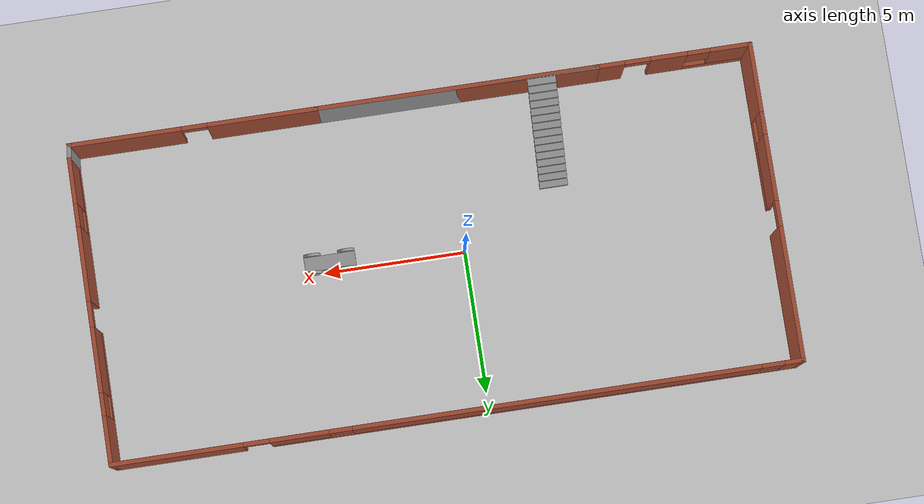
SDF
<sdf version="1.7">
 <world name="default">
  <model name="ground_plane">
   <static>1</static>
   <link name="link">
    <collision name="collision">
     <geometry><plane><normal>0 0 1</normal><size>100 100</size></plane></geometry>
     <surface>
      <contact><collide_bitmask>65535</collide_bitmask></contact>
      <friction><ode><mu>100</mu><mu2>50</mu2></ode></friction>
     </surface>
    </collision>
    <visual name="visual">
     <cast_shadows>0</cast_shadows>
     <geometry><plane><normal>0 0 1</normal><size>100 100</size></plane></geometry>
     <material>
      <script><uri>file://media/materials/scripts/gazebo.material</uri><name>Gazebo/Grey</name></script>
     </material>
    </visual>
   </link>
  </model>
  <model name="Building">
   <pose>1.13731 0.121981 0 0 -0 0</pose>
   <link name="Stairs_0">
    <visual name="Stairs_0_Visual_0">
     <pose>-4.59526 -2.08156 0.083333 0 -0 0</pose>
     <geometry><box><size>1 0.233333 0.166667</size></box></geometry>
     <material>
      <script><uri>file://media/materials/scripts/gazebo.material</uri><name>Gazebo/Grey</name></script>
      <ambient>1 1 1 1</ambient>
     </material>
     <meta><layer>0</layer></meta>
    </visual>
    <collision name="Stairs_0_Collision_0">
     <geometry><box><size>1 0.233333 0.166667</size></box></geometry>
     <pose>-4.59526 -2.08156 0.083333 0 -0 0</pose>
    </collision>
    <visual name="Stairs_0_Visual_1">
     <pose>-4.59526 -2.31489 0.25 0 -0 0</pose>
     <geometry><box><size>1 0.233333 0.166667</size></box></geometry>
     <material>
      <script><uri>file://media/materials/scripts/gazebo.material</uri><name>Gazebo/Grey</name></script>
      <ambient>1 1 1 1</ambient>
     </material>
     <meta><layer>0</layer></meta>
    </visual>
    <collision name="Stairs_0_Collision_1">
     <geometry><box><size>1 0.233333 0.166667</size></box></geometry>
     <pose>-4.59526 -2.31489 0.25 0 -0 0</pose>
    </collision>
    <visual name="Stairs_0_Visual_2">
     <pose>-4.59526 -2.54822 0.416667 0 -0 0</pose>
     <geometry><box><size>1 0.233333 0.166667</size></box></geometry>
     <material>
      <script><uri>file://media/materials/scripts/gazebo.material</uri><name>Gazebo/Grey</name></script>
      <ambient>1 1 1 1</ambient>
     </material>
     <meta><layer>0</layer></meta>
    </visual>
    <collision name="Stairs_0_Collision_2">
     <geometry><box><size>1 0.233333 0.166667</size></box></geometry>
     <pose>-4.59526 -2.54822 0.416667 0 -0 0</pose>
    </collision>
    <visual name="Stairs_0_Visual_3">
     <pose>-4.59526 -2.78156 0.583333 0 -0 0</pose>
     <geometry><box><size>1 0.233333 0.166667</size></box></geometry>
     <material>
      <script><uri>file://media/materials/scripts/gazebo.material</uri><name>Gazebo/Grey</name></script>
      <ambient>1 1 1 1</ambient>
     </material>
     <meta><layer>0</layer></meta>
    </visual>
    <collision name="Stairs_0_Collision_3">
     <geometry><box><size>1 0.233333 0.166667</size></box></geometry>
     <pose>-4.59526 -2.78156 0.583333 0 -0 0</pose>
    </collision>
    <visual name="Stairs_0_Visual_4">
     <pose>-4.59526 -3.01489 0.75 0 -0 0</pose>
     <geometry><box><size>1 0.233333 0.166667</size></box></geometry>
     <material>
      <script><uri>file://media/materials/scripts/gazebo.material</uri><name>Gazebo/Grey</name></script>
      <ambient>1 1 1 1</ambient>
     </material>
     <meta><layer>0</layer></meta>
    </visual>
    <collision name="Stairs_0_Collision_4">
     <geometry><box><size>1 0.233333 0.166667</size></box></geometry>
     <pose>-4.59526 -3.01489 0.75 0 -0 0</pose>
    </collision>
    <visual name="Stairs_0_Visual_5">
     <pose>-4.59526 -3.24823 0.916667 0 -0 0</pose>
     <geometry><box><size>1 0.233333 0.166667</size></box></geometry>
     <material>
      <script><uri>file://media/materials/scripts/gazebo.material</uri><name>Gazebo/Grey</name></script>
      <ambient>1 1 1 1</ambient>
     </material>
     <meta><layer>0</layer></meta>
    </visual>
    <collision name="Stairs_0_Collision_5">
     <geometry><box><size>1 0.233333 0.166667</size></box></geometry>
     <pose>-4.59526 -3.24823 0.916667 0 -0 0</pose>
    </collision>
    <visual name="Stairs_0_Visual_6">
     <pose>-4.59526 -3.48156 1.08333 0 -0 0</pose>
     <geometry><box><size>1 0.233333 0.166667</size></box></geometry>
     <material>
      <script><uri>file://media/materials/scripts/gazebo.material</uri><name>Gazebo/Grey</name></script>
      <ambient>1 1 1 1</ambient>
     </material>
     <meta><layer>0</layer></meta>
    </visual>
    <collision name="Stairs_0_Collision_6">
     <geometry><box><size>1 0.233333 0.166667</size></box></geometry>
     <pose>-4.59526 -3.48156 1.08333 0 -0 0</pose>
    </collision>
    <visual name="Stairs_0_Visual_7">
     <pose>-4.59526 -3.71489 1.25 0 -0 0</pose>
     <geometry><box><size>1 0.233333 0.166667</size></box></geometry>
     <material>
      <script><uri>file://media/materials/scripts/gazebo.material</uri><name>Gazebo/Grey</name></script>
      <ambient>1 1 1 1</ambient>
     </material>
     <meta><layer>0</layer></meta>
    </visual>
    <collision name="Stairs_0_Collision_7">
     <geometry><box><size>1 0.233333 0.166667</size></box></geometry>
     <pose>-4.59526 -3.71489 1.25 0 -0 0</pose>
    </collision>
    <visual name="Stairs_0_Visual_8">
     <pose>-4.59526 -3.94822 1.41667 0 -0 0</pose>
     <geometry><box><size>1 0.233333 0.166667</size></box></geometry>
     <material>
      <script><uri>file://media/materials/scripts/gazebo.material</uri><name>Gazebo/Grey</name></script>
      <ambient>1 1 1 1</ambient>
     </material>
     <meta><layer>0</layer></meta>
    </visual>
    <collision name="Stairs_0_Collision_8">
     <geometry><box><size>1 0.233333 0.166667</size></box></geometry>
     <pose>-4.59526 -3.94822 1.41667 0 -0 0</pose>
    </collision>
    <visual name="Stairs_0_Visual_9">
     <pose>-4.59526 -4.18156 1.58333 0 -0 0</pose>
     <geometry><box><size>1 0.233333 0.166667</size></box></geometry>
     <material>
      <script><uri>file://media/materials/scripts/gazebo.material</uri><name>Gazebo/Grey</name></script>
      <ambient>1 1 1 1</ambient>
     </material>
     <meta><layer>0</layer></meta>
    </visual>
    <collision name="Stairs_0_Collision_9">
     <geometry><box><size>1 0.233333 0.166667</size></box></geometry>
     <pose>-4.59526 -4.18156 1.58333 0 -0 0</pose>
    </collision>
    <visual name="Stairs_0_Visual_10">
     <pose>-4.59526 -4.41489 1.75 0 -0 0</pose>
     <geometry><box><size>1 0.233333 0.166667</size></box></geometry>
     <material>
      <script><uri>file://media/materials/scripts/gazebo.material</uri><name>Gazebo/Grey</name></script>
      <ambient>1 1 1 1</ambient>
     </material>
     <meta><layer>0</layer></meta>
    </visual>
    <collision name="Stairs_0_Collision_10">
     <geometry><box><size>1 0.233333 0.166667</size></box></geometry>
     <pose>-4.59526 -4.41489 1.75 0 -0 0</pose>
    </collision>
    <visual name="Stairs_0_Visual_11">
     <pose>-4.59526 -4.64823 1.91667 0 -0 0</pose>
     <geometry><box><size>1 0.233333 0.166667</size></box></geometry>
     <material>
      <script><uri>file://media/materials/scripts/gazebo.material</uri><name>Gazebo/Grey</name></script>
      <ambient>1 1 1 1</ambient>
     </material>
     <meta><layer>0</layer></meta>
    </visual>
    <collision name="Stairs_0_Collision_11">
     <geometry><box><size>1 0.233333 0.166667</size></box></geometry>
     <pose>-4.59526 -4.64823 1.91667 0 -0 0</pose>
    </collision>
    <visual name="Stairs_0_Visual_12">
     <pose>-4.59526 -4.88156 2.08333 0 -0 0</pose>
     <geometry><box><size>1 0.233333 0.166667</size></box></geometry>
     <material>
      <script><uri>file://media/materials/scripts/gazebo.material</uri><name>Gazebo/Grey</name></script>
      <ambient>1 1 1 1</ambient>
     </material>
     <meta><layer>0</layer></meta>
    </visual>
    <collision name="Stairs_0_Collision_12">
     <geometry><box><size>1 0.233333 0.166667</size></box></geometry>
     <pose>-4.59526 -4.88156 2.08333 0 -0 0</pose>
    </collision>
    <visual name="Stairs_0_Visual_13">
     <pose>-4.59526 -5.11489 2.25 0 -0 0</pose>
     <geometry><box><size>1 0.233333 0.166667</size></box></geometry>
     <material>
      <script><uri>file://media/materials/scripts/gazebo.material</uri><name>Gazebo/Grey</name></script>
      <ambient>1 1 1 1</ambient>
     </material>
     <meta><layer>0</layer></meta>
    </visual>
    <collision name="Stairs_0_Collision_13">
     <geometry><box><size>1 0.233333 0.166667</size></box></geometry>
     <pose>-4.59526 -5.11489 2.25 0 -0 0</pose>
    </collision>
    <visual name="Stairs_0_Visual_14">
     <pose>-4.59526 -5.34823 2.41667 0 -0 0</pose>
     <geometry><box><size>1 0.233333 0.166667</size></box></geometry>
     <material>
      <script><uri>file://media/materials/scripts/gazebo.material</uri><name>Gazebo/Grey</name></script>
      <ambient>1 1 1 1</ambient>
     </material>
     <meta><layer>0</layer></meta>
    </visual>
    <collision name="Stairs_0_Collision_14">
     <geometry><box><size>1 0.233333 0.166667</size></box></geometry>
     <pose>-4.59526 -5.34823 2.41667 0 -0 0</pose>
    </collision>
   </link>
   <link name="Wall_0">
    <collision name="Wall_0_Collision">
     <geometry><box><size>10 0.15 2.5</size></box></geometry>
     <pose>0 0 1.25 0 -0 0</pose>
    </collision>
    <visual name="Wall_0_Visual">
     <pose>0 0 1.25 0 -0 0</pose>
     <geometry><box><size>10 0.15 2.5</size></box></geometry>
     <material>
      <script><uri>file://media/materials/scripts/gazebo.material</uri><name>Gazebo/Grey</name></script>
      <ambient>1 1 1 1</ambient>
     </material>
     <meta><layer>0</layer></meta>
    </visual>
    <pose>-1.65355 -5.54645 0 0 -0 0</pose>
   </link>
   <link name="Wall_1">
    <collision name="Wall_1_Collision">
     <geometry><box><size>10 0.15 2.5</size></box></geometry>
     <pose>0 0 1.25 0 -0 0</pose>
    </collision>
    <visual name="Wall_1_Visual">
     <pose>0 0 1.25 0 -0 0</pose>
     <geometry><box><size>10 0.15 2.5</size></box></geometry>
     <material>
      <script><uri>file://media/materials/scripts/gazebo.material</uri><name>Gazebo/Bricks</name></script>
      <ambient>0.996078 0.47451 0.0196078 1</ambient>
     </material>
     <meta><layer>0</layer></meta>
    </visual>
    <pose>-1.65355 -5.54645 0 0 -0 3.14159</pose>
   </link>
   <link name="Wall_10">
    <collision name="Wall_10_Collision">
     <geometry><box><size>0.15 0.15 2.5</size></box></geometry>
     <pose>0 0 1.25 0 -0 0</pose>
    </collision>
    <visual name="Wall_10_Visual">
     <pose>0 0 1.25 0 -0 0</pose>
     <geometry><box><size>0.15 0.15 2.5</size></box></geometry>
     <material>
      <script><uri>file://media/materials/scripts/gazebo.material</uri><name>Gazebo/Grey</name></script>
      <ambient>1 1 1 1</ambient>
     </material>
     <meta><layer>0</layer></meta>
    </visual>
    <pose>11.8715 -5.54645 0 0 -0 0</pose>
   </link>
   <link name="Wall_11">
    <collision name="Wall_11_Collision">
     <geometry><box><size>0.652494 0.15 2.5</size></box></geometry>
     <pose>0 0 1.25 0 -0 0</pose>
    </collision>
    <visual name="Wall_11_Visual">
     <pose>0 0 1.25 0 -0 0</pose>
     <geometry><box><size>0.652494 0.15 2.5</size></box></geometry>
     <material>
      <script><uri>file://media/materials/scripts/gazebo.material</uri><name>Gazebo/Grey</name></script>
      <ambient>1 1 1 1</ambient>
     </material>
     <meta><layer>0</layer></meta>
    </visual>
    <pose>11.8965 -5.29645 0 0 -0 1.47113</pose>
   </link>
   <link name="Wall_2">
    <pose>-9.25355 -5.54645 0 0 -0 3.14159</pose>
    <visual name="Wall_2_Visual_0">
     <pose>-2.23139 0 1.25 0 -0 0</pose>
     <geometry><box><size>1.03723 0.15 2.5</size></box></geometry>
     <material>
      <script><uri>file://media/materials/scripts/gazebo.material</uri><name>Gazebo/Bricks</name></script>
      <ambient>1 0.764706 0.305882 1</ambient>
     </material>
     <meta><layer>0</layer></meta>
    </visual>
    <collision name="Wall_2_Collision_0">
     <geometry><box><size>1.03723 0.15 2.5</size></box></geometry>
     <pose>-2.23139 0 1.25 0 -0 0</pose>
    </collision>
    <visual name="Wall_2_Visual_1">
     <pose>-0.167113 0 1.25 0 -0 0</pose>
     <geometry><box><size>1.29132 0.15 2.5</size></box></geometry>
     <material>
      <script><uri>file://media/materials/scripts/gazebo.material</uri><name>Gazebo/Bricks</name></script>
      <ambient>1 0.764706 0.305882 1</ambient>
     </material>
     <meta><layer>0</layer></meta>
    </visual>
    <collision name="Wall_2_Collision_1">
     <geometry><box><size>1.29132 0.15 2.5</size></box></geometry>
     <pose>-0.167113 0 1.25 0 -0 0</pose>
    </collision>
    <visual name="Wall_2_Visual_2">
     <pose>1.61427 0 0.25 0 -0 0</pose>
     <geometry><box><size>2.27146 0.15 0.5</size></box></geometry>
     <material>
      <script><uri>file://media/materials/scripts/gazebo.material</uri><name>Gazebo/Bricks</name></script>
      <ambient>1 0.764706 0.305882 1</ambient>
     </material>
     <meta><layer>0</layer></meta>
    </visual>
    <collision name="Wall_2_Collision_2">
     <geometry><box><size>2.27146 0.15 0.5</size></box></geometry>
     <pose>1.61427 0 0.25 0 -0 0</pose>
    </collision>
    <visual name="Wall_2_Visual_3">
     <pose>2.01427 0 1.5 0 -0 0</pose>
     <geometry><box><size>1.47145 0.15 2</size></box></geometry>
     <material>
      <script><uri>file://media/materials/scripts/gazebo.material</uri><name>Gazebo/Bricks</name></script>
      <ambient>1 0.764706 0.305882 1</ambient>
     </material>
     <meta><layer>0</layer></meta>
    </visual>
    <collision name="Wall_2_Collision_3">
     <geometry><box><size>1.47145 0.15 2</size></box></geometry>
     <pose>2.01427 0 1.5 0 -0 0</pose>
    </collision>
    <visual name="Wall_2_Visual_4">
     <pose>0.878545 0 1.9 0 -0 0</pose>
     <geometry><box><size>0.8 0.15 1.2</size></box></geometry>
     <material>
      <script><uri>file://media/materials/scripts/gazebo.material</uri><name>Gazebo/Bricks</name></script>
      <ambient>1 0.764706 0.305882 1</ambient>
     </material>
     <meta><layer>0</layer></meta>
    </visual>
    <collision name="Wall_2_Collision_4">
     <geometry><box><size>0.8 0.15 1.2</size></box></geometry>
     <pose>0.878545 0 1.9 0 -0 0</pose>
    </collision>
    <visual name="Wall_2_Visual_5">
     <pose>-1.26277 0 2.25 0 -0 0</pose>
     <geometry><box><size>0.9 0.15 0.5</size></box></geometry>
     <material>
      <script><uri>file://media/materials/scripts/gazebo.material</uri><name>Gazebo/Bricks</name></script>
      <ambient>1 0.764706 0.305882 1</ambient>
     </material>
     <meta><layer>0</layer></meta>
    </visual>
    <collision name="Wall_2_Collision_5">
     <geometry><box><size>0.9 0.15 0.5</size></box></geometry>
     <pose>-1.26277 0 2.25 0 -0 0</pose>
    </collision>
   </link>
   <link name="Wall_3">
    <pose>-11.9285 0.003545 0 0 -0 1.5708</pose>
    <visual name="Wall_3_Visual_0">
     <pose>-4.38227 0 1.25 0 -0 0</pose>
     <geometry><box><size>2.48545 0.15 2.5</size></box></geometry>
     <material>
      <script><uri>file://media/materials/scripts/gazebo.material</uri><name>Gazebo/Bricks</name></script>
      <ambient>1 0.764706 0.305882 1</ambient>
     </material>
     <meta><layer>0</layer></meta>
    </visual>
    <collision name="Wall_3_Collision_0">
     <geometry><box><size>2.48545 0.15 2.5</size></box></geometry>
     <pose>-4.38227 0 1.25 0 -0 0</pose>
    </collision>
    <visual name="Wall_3_Visual_1">
     <pose>3.25842 0 1.25 0 -0 0</pose>
     <geometry><box><size>4.73317 0.15 2.5</size></box></geometry>
     <material>
      <script><uri>file://media/materials/scripts/gazebo.material</uri><name>Gazebo/Bricks</name></script>
      <ambient>1 0.764706 0.305882 1</ambient>
     </material>
     <meta><layer>0</layer></meta>
    </visual>
    <collision name="Wall_3_Collision_1">
     <geometry><box><size>4.73317 0.15 2.5</size></box></geometry>
     <pose>3.25842 0 1.25 0 -0 0</pose>
    </collision>
    <visual name="Wall_3_Visual_2">
     <pose>-1.57386 0 0.25 0 -0 0</pose>
     <geometry><box><size>3.13138 0.15 0.5</size></box></geometry>
     <material>
      <script><uri>file://media/materials/scripts/gazebo.material</uri><name>Gazebo/Bricks</name></script>
      <ambient>1 0.764706 0.305882 1</ambient>
     </material>
     <meta><layer>0</layer></meta>
    </visual>
    <collision name="Wall_3_Collision_2">
     <geometry><box><size>3.13138 0.15 0.5</size></box></geometry>
     <pose>-1.57386 0 0.25 0 -0 0</pose>
    </collision>
    <visual name="Wall_3_Visual_3">
     <pose>-1.17386 0 1.5 0 -0 0</pose>
     <geometry><box><size>2.33138 0.15 2</size></box></geometry>
     <material>
      <script><uri>file://media/materials/scripts/gazebo.material</uri><name>Gazebo/Bricks</name></script>
      <ambient>1 0.764706 0.305882 1</ambient>
     </material>
     <meta><layer>0</layer></meta>
    </visual>
    <collision name="Wall_3_Collision_3">
     <geometry><box><size>2.33138 0.15 2</size></box></geometry>
     <pose>-1.17386 0 1.5 0 -0 0</pose>
    </collision>
    <visual name="Wall_3_Visual_4">
     <pose>-2.73955 0 1.9 0 -0 0</pose>
     <geometry><box><size>0.8 0.15 1.2</size></box></geometry>
     <material>
      <script><uri>file://media/materials/scripts/gazebo.material</uri><name>Gazebo/Bricks</name></script>
      <ambient>1 0.764706 0.305882 1</ambient>
     </material>
     <meta><layer>0</layer></meta>
    </visual>
    <collision name="Wall_3_Collision_4">
     <geometry><box><size>0.8 0.15 1.2</size></box></geometry>
     <pose>-2.73955 0 1.9 0 -0 0</pose>
    </collision>
    <visual name="Wall_3_Visual_5">
     <pose>0.441834 0 2.25 0 -0 0</pose>
     <geometry><box><size>0.9 0.15 0.5</size></box></geometry>
     <material>
      <script><uri>file://media/materials/scripts/gazebo.material</uri><name>Gazebo/Bricks</name></script>
      <ambient>1 0.764706 0.305882 1</ambient>
     </material>
     <meta><layer>0</layer></meta>
    </visual>
    <collision name="Wall_3_Collision_5">
     <geometry><box><size>0.9 0.15 0.5</size></box></geometry>
     <pose>0.441834 0 2.25 0 -0 0</pose>
    </collision>
   </link>
   <link name="Wall_5">
    <pose>-0.003545 5.55354 0 0 -0 0</pose>
    <visual name="Wall_5_Visual_0">
     <pose>-11.6466 0 1.25 0 -0 0</pose>
     <geometry><box><size>0.706699 0.15 2.5</size></box></geometry>
     <material>
      <script><uri>file://media/materials/scripts/gazebo.material</uri><name>Gazebo/Bricks</name></script>
      <ambient>1 0.764706 0.305882 1</ambient>
     </material>
     <meta><layer>0</layer></meta>
    </visual>
    <collision name="Wall_5_Collision_0">
     <geometry><box><size>0.706699 0.15 2.5</size></box></geometry>
     <pose>-11.6466 0 1.25 0 -0 0</pose>
    </collision>
    <visual name="Wall_5_Visual_1">
     <pose>9.6954 0 1.25 0 -0 0</pose>
     <geometry><box><size>4.6092 0.15 2.5</size></box></geometry>
     <material>
      <script><uri>file://media/materials/scripts/gazebo.material</uri><name>Gazebo/Bricks</name></script>
      <ambient>1 0.764706 0.305882 1</ambient>
     </material>
     <meta><layer>0</layer></meta>
    </visual>
    <collision name="Wall_5_Collision_1">
     <geometry><box><size>4.6092 0.15 2.5</size></box></geometry>
     <pose>9.6954 0 1.25 0 -0 0</pose>
    </collision>
    <visual name="Wall_5_Visual_2">
     <pose>-2.40125 0 0.25 0 -0 0</pose>
     <geometry><box><size>17.7841 0.15 0.5</size></box></geometry>
     <material>
      <script><uri>file://media/materials/scripts/gazebo.material</uri><name>Gazebo/Bricks</name></script>
      <ambient>1 0.764706 0.305882 1</ambient>
     </material>
     <meta><layer>0</layer></meta>
    </visual>
    <collision name="Wall_5_Collision_2">
     <geometry><box><size>17.7841 0.15 0.5</size></box></geometry>
     <pose>-2.40125 0 0.25 0 -0 0</pose>
    </collision>
    <visual name="Wall_5_Visual_3">
     <pose>-3.42929 0 1.5 0 -0 0</pose>
     <geometry><box><size>14.128 0.15 2</size></box></geometry>
     <material>
      <script><uri>file://media/materials/scripts/gazebo.material</uri><name>Gazebo/Bricks</name></script>
      <ambient>1 0.764706 0.305882 1</ambient>
     </material>
     <meta><layer>0</layer></meta>
    </visual>
    <collision name="Wall_5_Collision_3">
     <geometry><box><size>14.128 0.15 2</size></box></geometry>
     <pose>-3.42929 0 1.5 0 -0 0</pose>
    </collision>
    <visual name="Wall_5_Visual_4">
     <pose>5.46277 0 1.5 0 -0 0</pose>
     <geometry><box><size>2.05607 0.15 2</size></box></geometry>
     <material>
      <script><uri>file://media/materials/scripts/gazebo.material</uri><name>Gazebo/Bricks</name></script>
      <ambient>1 0.764706 0.305882 1</ambient>
     </material>
     <meta><layer>0</layer></meta>
    </visual>
    <collision name="Wall_5_Collision_4">
     <geometry><box><size>2.05607 0.15 2</size></box></geometry>
     <pose>5.46277 0 1.5 0 -0 0</pose>
    </collision>
    <visual name="Wall_5_Visual_5">
     <pose>-10.8933 0 1.9 0 -0 0</pose>
     <geometry><box><size>0.8 0.15 1.2</size></box></geometry>
     <material>
      <script><uri>file://media/materials/scripts/gazebo.material</uri><name>Gazebo/Bricks</name></script>
      <ambient>1 0.764706 0.305882 1</ambient>
     </material>
     <meta><layer>0</layer></meta>
    </visual>
    <collision name="Wall_5_Collision_5">
     <geometry><box><size>0.8 0.15 1.2</size></box></geometry>
     <pose>-10.8933 0 1.9 0 -0 0</pose>
    </collision>
    <visual name="Wall_5_Visual_6">
     <pose>4.03473 0 1.9 0 -0 0</pose>
     <geometry><box><size>0.8 0.15 1.2</size></box></geometry>
     <material>
      <script><uri>file://media/materials/scripts/gazebo.material</uri><name>Gazebo/Bricks</name></script>
      <ambient>1 0.764706 0.305882 1</ambient>
     </material>
     <meta><layer>0</layer></meta>
    </visual>
    <collision name="Wall_5_Collision_6">
     <geometry><box><size>0.8 0.15 1.2</size></box></geometry>
     <pose>4.03473 0 1.9 0 -0 0</pose>
    </collision>
    <visual name="Wall_5_Visual_7">
     <pose>6.9408 0 2.25 0 -0 0</pose>
     <geometry><box><size>0.9 0.15 0.5</size></box></geometry>
     <material>
      <script><uri>file://media/materials/scripts/gazebo.material</uri><name>Gazebo/Bricks</name></script>
      <ambient>1 0.764706 0.305882 1</ambient>
     </material>
     <meta><layer>0</layer></meta>
    </visual>
    <collision name="Wall_5_Collision_7">
     <geometry><box><size>0.9 0.15 0.5</size></box></geometry>
     <pose>6.9408 0 2.25 0 -0 0</pose>
    </collision>
   </link>
   <link name="Wall_7">
    <pose>11.9215 0.253545 0 0 -0 -1.5708</pose>
    <visual name="Wall_7_Visual_0">
     <pose>-4.49763 0 1.25 0 -0 0</pose>
     <geometry><box><size>1.75473 0.15 2.5</size></box></geometry>
     <material>
      <script><uri>file://media/materials/scripts/gazebo.material</uri><name>Gazebo/Bricks</name></script>
      <ambient>1 0.764706 0.305882 1</ambient>
     </material>
     <meta><layer>0</layer></meta>
    </visual>
    <collision name="Wall_7_Collision_0">
     <geometry><box><size>1.75473 0.15 2.5</size></box></geometry>
     <pose>-4.49763 0 1.25 0 -0 0</pose>
    </collision>
    <visual name="Wall_7_Visual_1">
     <pose>1.65328 0 1.25 0 -0 0</pose>
     <geometry><box><size>2.6067 0.15 2.5</size></box></geometry>
     <material>
      <script><uri>file://media/materials/scripts/gazebo.material</uri><name>Gazebo/Bricks</name></script>
      <ambient>1 0.764706 0.305882 1</ambient>
     </material>
     <meta><layer>0</layer></meta>
    </visual>
    <collision name="Wall_7_Collision_1">
     <geometry><box><size>2.6067 0.15 2.5</size></box></geometry>
     <pose>1.65328 0 1.25 0 -0 0</pose>
    </collision>
    <visual name="Wall_7_Visual_2">
     <pose>-2.08516 0 0.25 0 -0 0</pose>
     <geometry><box><size>3.0702 0.15 0.5</size></box></geometry>
     <material>
      <script><uri>file://media/materials/scripts/gazebo.material</uri><name>Gazebo/Bricks</name></script>
      <ambient>1 0.764706 0.305882 1</ambient>
     </material>
     <meta><layer>0</layer></meta>
    </visual>
    <collision name="Wall_7_Collision_2">
     <geometry><box><size>3.0702 0.15 0.5</size></box></geometry>
     <pose>-2.08516 0 0.25 0 -0 0</pose>
    </collision>
    <visual name="Wall_7_Visual_3">
     <pose>4.16582 0 0.25 0 -0 0</pose>
     <geometry><box><size>2.41837 0.15 0.5</size></box></geometry>
     <material>
      <script><uri>file://media/materials/scripts/gazebo.material</uri><name>Gazebo/Bricks</name></script>
      <ambient>1 0.764706 0.305882 1</ambient>
     </material>
     <meta><layer>0</layer></meta>
    </visual>
    <collision name="Wall_7_Collision_3">
     <geometry><box><size>2.41837 0.15 0.5</size></box></geometry>
     <pose>4.16582 0 0.25 0 -0 0</pose>
    </collision>
    <visual name="Wall_7_Visual_4">
     <pose>-1.68517 0 1.5 0 -0 0</pose>
     <geometry><box><size>2.2702 0.15 2</size></box></geometry>
     <material>
      <script><uri>file://media/materials/scripts/gazebo.material</uri><name>Gazebo/Bricks</name></script>
      <ambient>1 0.764706 0.305882 1</ambient>
     </material>
     <meta><layer>0</layer></meta>
    </visual>
    <collision name="Wall_7_Collision_4">
     <geometry><box><size>2.2702 0.15 2</size></box></geometry>
     <pose>-1.68517 0 1.5 0 -0 0</pose>
    </collision>
    <visual name="Wall_7_Visual_5">
     <pose>-1.68517 0 1.5 0 -0 0</pose>
     <geometry><box><size>2.2702 0.15 2</size></box></geometry>
     <material>
      <script><uri>file://media/materials/scripts/gazebo.material</uri><name>Gazebo/Bricks</name></script>
      <ambient>1 0.764706 0.305882 1</ambient>
     </material>
     <meta><layer>0</layer></meta>
    </visual>
    <collision name="Wall_7_Collision_5">
     <geometry><box><size>2.2702 0.15 2</size></box></geometry>
     <pose>-1.68517 0 1.5 0 -0 0</pose>
    </collision>
    <visual name="Wall_7_Visual_6">
     <pose>4.56582 0 1.5 0 -0 0</pose>
     <geometry><box><size>1.61837 0.15 2</size></box></geometry>
     <material>
      <script><uri>file://media/materials/scripts/gazebo.material</uri><name>Gazebo/Bricks</name></script>
      <ambient>1 0.764706 0.305882 1</ambient>
     </material>
     <meta><layer>0</layer></meta>
    </visual>
    <collision name="Wall_7_Collision_6">
     <geometry><box><size>1.61837 0.15 2</size></box></geometry>
     <pose>4.56582 0 1.5 0 -0 0</pose>
    </collision>
    <visual name="Wall_7_Visual_7">
     <pose>-3.22027 0 1.9 0 -0 0</pose>
     <geometry><box><size>0.8 0.15 1.2</size></box></geometry>
     <material>
      <script><uri>file://media/materials/scripts/gazebo.material</uri><name>Gazebo/Bricks</name></script>
      <ambient>1 0.764706 0.305882 1</ambient>
     </material>
     <meta><layer>0</layer></meta>
    </visual>
    <collision name="Wall_7_Collision_7">
     <geometry><box><size>0.8 0.15 1.2</size></box></geometry>
     <pose>-3.22027 0 1.9 0 -0 0</pose>
    </collision>
    <visual name="Wall_7_Visual_8">
     <pose>3.35663 0 1.9 0 -0 0</pose>
     <geometry><box><size>0.8 0.15 1.2</size></box></geometry>
     <material>
      <script><uri>file://media/materials/scripts/gazebo.material</uri><name>Gazebo/Bricks</name></script>
      <ambient>1 0.764706 0.305882 1</ambient>
     </material>
     <meta><layer>0</layer></meta>
    </visual>
    <collision name="Wall_7_Collision_8">
     <geometry><box><size>0.8 0.15 1.2</size></box></geometry>
     <pose>3.35663 0 1.9 0 -0 0</pose>
    </collision>
    <visual name="Wall_7_Visual_9">
     <pose>-0.100064 0 2.25 0 -0 0</pose>
     <geometry><box><size>0.9 0.15 0.5</size></box></geometry>
     <material>
      <script><uri>file://media/materials/scripts/gazebo.material</uri><name>Gazebo/Bricks</name></script>
      <ambient>1 0.764706 0.305882 1</ambient>
     </material>
     <meta><layer>0</layer></meta>
    </visual>
    <collision name="Wall_7_Collision_9">
     <geometry><box><size>0.9 0.15 0.5</size></box></geometry>
     <pose>-0.100064 0 2.25 0 -0 0</pose>
    </collision>
    <visual name="Wall_7_Visual_10">
     <pose>-0.100064 0 2.25 0 -0 0</pose>
     <geometry><box><size>0.9 0.15 0.5</size></box></geometry>
     <material>
      <script><uri>file://media/materials/scripts/gazebo.material</uri><name>Gazebo/Bricks</name></script>
      <ambient>1 0.764706 0.305882 1</ambient>
     </material>
     <meta><layer>0</layer></meta>
    </visual>
    <collision name="Wall_7_Collision_10">
     <geometry><box><size>0.9 0.15 0.5</size></box></geometry>
     <pose>-0.100064 0 2.25 0 -0 0</pose>
    </collision>
   </link>
   <link name="Wall_9">
    <pose>7.57146 -5.54645 0 0 -0 0</pose>
    <visual name="Wall_9_Visual_0">
     <pose>-2.43899 0 1.25 0 -0 0</pose>
     <geometry><box><size>3.87202 0.15 2.5</size></box></geometry>
     <material>
      <script><uri>file://media/materials/scripts/gazebo.material</uri><name>Gazebo/Bricks</name></script>
      <ambient>1 0.764706 0.305882 1</ambient>
     </material>
     <meta><layer>0</layer></meta>
    </visual>
    <collision name="Wall_9_Collision_0">
     <geometry><box><size>3.87202 0.15 2.5</size></box></geometry>
     <pose>-2.43899 0 1.25 0 -0 0</pose>
    </collision>
    <visual name="Wall_9_Visual_1">
     <pose>2.38601 0 1.25 0 -0 0</pose>
     <geometry><box><size>3.97798 0.15 2.5</size></box></geometry>
     <material>
      <script><uri>file://media/materials/scripts/gazebo.material</uri><name>Gazebo/Bricks</name></script>
      <ambient>1 0.764706 0.305882 1</ambient>
     </material>
     <meta><layer>0</layer></meta>
    </visual>
    <collision name="Wall_9_Collision_1">
     <geometry><box><size>3.97798 0.15 2.5</size></box></geometry>
     <pose>2.38601 0 1.25 0 -0 0</pose>
    </collision>
    <visual name="Wall_9_Visual_2">
     <pose>-0.052983 0 2.25 0 -0 0</pose>
     <geometry><box><size>0.9 0.15 0.5</size></box></geometry>
     <material>
      <script><uri>file://media/materials/scripts/gazebo.material</uri><name>Gazebo/Bricks</name></script>
      <ambient>1 0.764706 0.305882 1</ambient>
     </material>
     <meta><layer>0</layer></meta>
    </visual>
    <collision name="Wall_9_Collision_2">
     <geometry><box><size>0.9 0.15 0.5</size></box></geometry>
     <pose>-0.052983 0 2.25 0 -0 0</pose>
    </collision>
   </link>
   <static>1</static>
  </model>
  <model name="4WheelRobot_0">
   <link name="link_0">
    <inertial>
     <mass>0.166831</mass>
     <inertia>
      <ixx>0.0041914</ixx>
      <ixy>0</ixy>
      <ixz>0</ixz>
      <iyy>0.045684</iyy>
      <iyz>0</iyz>
      <izz>0.0489956</izz>
     </inertia>
    </inertial>
    <pose>2.04119 -2.4071 0.5 0 -0 0</pose>
    <visual name="visual">
     <geometry><box><size>1.80398 0.519461 0.177887</size></box></geometry>
     <material>
      <lighting>1</lighting>
      <script><uri>file://media/materials/scripts/gazebo.material</uri><name>Gazebo/Grey</name></script>
      <shader type="pixel"><normal_map>__default__</normal_map></shader>
      <emissive>0 0 0 1</emissive>
      <ambient>0.3 0.3 0.3 1</ambient>
      <diffuse>0.7 0.7 0.7 1</diffuse>
      <specular>0.01 0.01 0.01 1</specular>
     </material>
    </visual>
    <collision name="collision">
     <geometry><box><size>1.80398 0.519461 0.177887</size></box></geometry>
     <surface>
      <friction>
       <ode><mu>1</mu><mu2>1</mu2><fdir1>0 0 0</fdir1><slip1>0</slip1><slip2>0</slip2></ode>
       <torsional>
        <coefficient>1</coefficient>
        <patch_radius>0</patch_radius>
        <surface_radius>0</surface_radius>
        <use_patch_radius>1</use_patch_radius>
        <ode><slip>0</slip></ode>
       </torsional>
      </friction>
      <bounce><restitution_coefficient>0</restitution_coefficient><threshold>1e+06</threshold></bounce>
      <contact>
       <collide_without_contact>0</collide_without_contact>
       <collide_without_contact_bitmask>1</collide_without_contact_bitmask>
       <collide_bitmask>1</collide_bitmask>
       <ode>
        <soft_cfm>0</soft_cfm>
        <soft_erp>0.2</soft_erp>
        <kp>1e+13</kp>
        <kd>1</kd>
        <max_vel>0.01</max_vel>
        <min_depth>0</min_depth>
       </ode>
       <bullet>
        <split_impulse>1</split_impulse>
        <split_impulse_penetration_threshold>-0.01</split_impulse_penetration_threshold>
        <soft_cfm>0</soft_cfm>
        <soft_erp>0.2</soft_erp>
        <kp>1e+13</kp>
        <kd>1</kd>
       </bullet>
      </contact>
     </surface>
    </collision>
   </link>
   <link name="link_1">
    <inertial>
     <mass>1</mass>
     <inertia><ixx>0.145833</ixx><ixy>0</ixy><ixz>0</ixz><iyy>0.145833</iyy><iyz>0</iyz><izz>0.125</izz></inertia>
    </inertial>
    <pose>2.64318 -2.71686 0.5 1.5707 -0 0</pose>
    <visual name="visual">
     <geometry><cylinder><radius>0.3</radius><length>0.1</length></cylinder></geometry>
     <material>
      <lighting>1</lighting>
      <script><uri>file://media/materials/scripts/gazebo.material</uri><name>Gazebo/Grey</name></script>
      <shader type="pixel"><normal_map>__default__</normal_map></shader>
      <ambient>0.3 0.3 0.3 1</ambient>
      <diffuse>0.7 0.7 0.7 1</diffuse>
      <specular>0.01 0.01 0.01 1</specular>
      <emissive>0 0 0 1</emissive>
     </material>
    </visual>
    <collision name="collision">
     <geometry><cylinder><radius>0.3</radius><length>0.1</length></cylinder></geometry>
     <surface>
      <friction>
       <ode><mu>1</mu><mu2>1</mu2><fdir1>0 0 0</fdir1><slip1>0</slip1><slip2>0</slip2></ode>
       <torsional>
        <coefficient>1</coefficient>
        <patch_radius>0</patch_radius>
        <surface_radius>0</surface_radius>
        <use_patch_radius>1</use_patch_radius>
        <ode><slip>0</slip></ode>
       </torsional>
      </friction>
      <bounce><restitution_coefficient>0</restitution_coefficient><threshold>1e+06</threshold></bounce>
      <contact>
       <collide_without_contact>0</collide_without_contact>
       <collide_without_contact_bitmask>1</collide_without_contact_bitmask>
       <collide_bitmask>1</collide_bitmask>
       <ode>
        <soft_cfm>0</soft_cfm>
        <soft_erp>0.2</soft_erp>
        <kp>1e+13</kp>
        <kd>1</kd>
        <max_vel>0.01</max_vel>
        <min_depth>0</min_depth>
       </ode>
       <bullet>
        <split_impulse>1</split_impulse>
        <split_impulse_penetration_threshold>-0.01</split_impulse_penetration_threshold>
        <soft_cfm>0</soft_cfm>
        <soft_erp>0.2</soft_erp>
        <kp>1e+13</kp>
        <kd>1</kd>
       </bullet>
      </contact>
     </surface>
    </collision>
   </link>
   <link name="link_1_clone">
    <inertial>
     <mass>1</mass>
     <inertia><ixx>0.145833</ixx><ixy>0</ixy><ixz>0</ixz><iyy>0.145833</iyy><iyz>0</iyz><izz>0.125</izz></inertia>
    </inertial>
    <pose>1.4392 -2.09734 0.5 1.5707 -0 0</pose>
    <visual name="visual">
     <geometry><cylinder><radius>0.3</radius><length>0.1</length></cylinder></geometry>
     <material>
      <lighting>1</lighting>
      <script><uri>file://media/materials/scripts/gazebo.material</uri><name>Gazebo/Grey</name></script>
      <shader type="pixel"><normal_map>__default__</normal_map></shader>
      <ambient>0.3 0.3 0.3 1</ambient>
      <diffuse>0.7 0.7 0.7 1</diffuse>
      <specular>0.01 0.01 0.01 1</specular>
      <emissive>0 0 0 1</emissive>
     </material>
    </visual>
    <collision name="collision">
     <geometry><cylinder><radius>0.3</radius><length>0.1</length></cylinder></geometry>
     <surface>
      <friction>
       <ode><mu>1</mu><mu2>1</mu2><fdir1>0 0 0</fdir1><slip1>0</slip1><slip2>0</slip2></ode>
       <torsional>
        <coefficient>1</coefficient>
        <patch_radius>0</patch_radius>
        <surface_radius>0</surface_radius>
        <use_patch_radius>1</use_patch_radius>
        <ode><slip>0</slip></ode>
       </torsional>
      </friction>
      <bounce><restitution_coefficient>0</restitution_coefficient><threshold>1e+06</threshold></bounce>
      <contact>
       <collide_without_contact>0</collide_without_contact>
       <collide_without_contact_bitmask>1</collide_without_contact_bitmask>
       <collide_bitmask>1</collide_bitmask>
       <ode>
        <soft_cfm>0</soft_cfm>
        <soft_erp>0.2</soft_erp>
        <kp>1e+13</kp>
        <kd>1</kd>
        <max_vel>0.01</max_vel>
        <min_depth>0</min_depth>
       </ode>
       <bullet>
        <split_impulse>1</split_impulse>
        <split_impulse_penetration_threshold>-0.01</split_impulse_penetration_threshold>
        <soft_cfm>0</soft_cfm>
        <soft_erp>0.2</soft_erp>
        <kp>1e+13</kp>
        <kd>1</kd>
       </bullet>
      </contact>
     </surface>
    </collision>
   </link>
   <link name="link_1_clone_0">
    <inertial>
     <mass>1</mass>
     <inertia><ixx>0.145833</ixx><ixy>0</ixy><ixz>0</ixz><iyy>0.145833</iyy><iyz>0</iyz><izz>0.125</izz></inertia>
    </inertial>
    <pose>1.4392 -2.71686 0.5 1.5707 -0 0</pose>
    <visual name="visual">
     <geometry><cylinder><radius>0.3</radius><length>0.1</length></cylinder></geometry>
     <material>
      <lighting>1</lighting>
      <script><uri>file://media/materials/scripts/gazebo.material</uri><name>Gazebo/Grey</name></script>
      <shader type="pixel"><normal_map>__default__</normal_map></shader>
      <ambient>0.3 0.3 0.3 1</ambient>
      <diffuse>0.7 0.7 0.7 1</diffuse>
      <specular>0.01 0.01 0.01 1</specular>
      <emissive>0 0 0 1</emissive>
     </material>
    </visual>
    <collision name="collision">
     <geometry><cylinder><radius>0.3</radius><length>0.1</length></cylinder></geometry>
     <surface>
      <friction>
       <ode><mu>1</mu><mu2>1</mu2><fdir1>0 0 0</fdir1><slip1>0</slip1><slip2>0</slip2></ode>
       <torsional>
        <coefficient>1</coefficient>
        <patch_radius>0</patch_radius>
        <surface_radius>0</surface_radius>
        <use_patch_radius>1</use_patch_radius>
        <ode><slip>0</slip></ode>
       </torsional>
      </friction>
      <bounce><restitution_coefficient>0</restitution_coefficient><threshold>1e+06</threshold></bounce>
      <contact>
       <collide_without_contact>0</collide_without_contact>
       <collide_without_contact_bitmask>1</collide_without_contact_bitmask>
       <collide_bitmask>1</collide_bitmask>
       <ode>
        <soft_cfm>0</soft_cfm>
        <soft_erp>0.2</soft_erp>
        <kp>1e+13</kp>
        <kd>1</kd>
        <max_vel>0.01</max_vel>
        <min_depth>0</min_depth>
       </ode>
       <bullet>
        <split_impulse>1</split_impulse>
        <split_impulse_penetration_threshold>-0.01</split_impulse_penetration_threshold>
        <soft_cfm>0</soft_cfm>
        <soft_erp>0.2</soft_erp>
        <kp>1e+13</kp>
        <kd>1</kd>
       </bullet>
      </contact>
     </surface>
    </collision>
   </link>
   <link name="link_1_clone_clone">
    <inertial>
     <mass>1</mass>
     <inertia><ixx>0.145833</ixx><ixy>0</ixy><ixz>0</ixz><iyy>0.145833</iyy><iyz>0</iyz><izz>0.125</izz></inertia>
    </inertial>
    <pose>2.64318 -2.09734 0.5 1.5707 -0 0</pose>
    <visual name="visual">
     <geometry><cylinder><radius>0.3</radius><length>0.1</length></cylinder></geometry>
     <material>
      <lighting>1</lighting>
      <script><uri>file://media/materials/scripts/gazebo.material</uri><name>Gazebo/Grey</name></script>
      <shader type="pixel"><normal_map>__default__</normal_map></shader>
      <ambient>0.3 0.3 0.3 1</ambient>
      <diffuse>0.7 0.7 0.7 1</diffuse>
      <specular>0.01 0.01 0.01 1</specular>
      <emissive>0 0 0 1</emissive>
     </material>
    </visual>
    <collision name="collision">
     <geometry><cylinder><radius>0.3</radius><length>0.1</length></cylinder></geometry>
     <surface>
      <friction>
       <ode><mu>1</mu><mu2>1</mu2><fdir1>0 0 0</fdir1><slip1>0</slip1><slip2>0</slip2></ode>
       <torsional>
        <coefficient>1</coefficient>
        <patch_radius>0</patch_radius>
        <surface_radius>0</surface_radius>
        <use_patch_radius>1</use_patch_radius>
        <ode><slip>0</slip></ode>
       </torsional>
      </friction>
      <bounce><restitution_coefficient>0</restitution_coefficient><threshold>1e+06</threshold></bounce>
      <contact>
       <collide_without_contact>0</collide_without_contact>
       <collide_without_contact_bitmask>1</collide_without_contact_bitmask>
       <collide_bitmask>1</collide_bitmask>
       <ode>
        <soft_cfm>0</soft_cfm>
        <soft_erp>0.2</soft_erp>
        <kp>1e+13</kp>
        <kd>1</kd>
        <max_vel>0.01</max_vel>
        <min_depth>0</min_depth>
       </ode>
       <bullet>
        <split_impulse>1</split_impulse>
        <split_impulse_penetration_threshold>-0.01</split_impulse_penetration_threshold>
        <soft_cfm>0</soft_cfm>
        <soft_erp>0.2</soft_erp>
        <kp>1e+13</kp>
        <kd>1</kd>
       </bullet>
      </contact>
     </surface>
    </collision>
   </link>
   <joint name="link_0_JOINT_10" type="revolute">
    <parent>link_0</parent>
    <child>link_1_clone_clone</child>
    <axis>
     <xyz>0 0 1</xyz>
     <limit>
      <lower>-1.79769e+308</lower>
      <upper>1.79769e+308</upper>
      <effort>-1</effort>
      <velocity>-1</velocity>
     </limit>
     <dynamics>
      <spring_reference>0</spring_reference>
      <spring_stiffness>0</spring_stiffness>
      <damping>0</damping>
      <friction>0</friction>
     </dynamics>
    </axis>
    <physics>
     <ode><limit><cfm>0</cfm><erp>0.2</erp></limit><suspension><cfm>0</cfm><erp>0.2</erp></suspension></ode>
    </physics>
   </joint>
   <joint name="link_0_JOINT_11" type="revolute">
    <parent>link_0</parent>
    <child>link_1_clone_0</child>
    <axis>
     <xyz>0 0 1</xyz>
     <limit>
      <lower>-1.79769e+308</lower>
      <upper>1.79769e+308</upper>
      <effort>-1</effort>
      <velocity>-1</velocity>
     </limit>
     <dynamics>
      <spring_reference>0</spring_reference>
      <spring_stiffness>0</spring_stiffness>
      <damping>0</damping>
      <friction>0</friction>
     </dynamics>
    </axis>
    <physics>
     <ode><limit><cfm>0</cfm><erp>0.2</erp></limit><suspension><cfm>0</cfm><erp>0.2</erp></suspension></ode>
    </physics>
   </joint>
   <joint name="link_0_JOINT_8" type="revolute">
    <parent>link_0</parent>
    <child>link_1</child>
    <axis>
     <xyz>0 0 1</xyz>
     <limit>
      <lower>-1.79769e+308</lower>
      <upper>1.79769e+308</upper>
      <effort>-1</effort>
      <velocity>-1</velocity>
     </limit>
     <dynamics>
      <spring_reference>0</spring_reference>
      <spring_stiffness>0</spring_stiffness>
      <damping>0</damping>
      <friction>0</friction>
     </dynamics>
    </axis>
    <physics>
     <ode><limit><cfm>0</cfm><erp>0.2</erp></limit><suspension><cfm>0</cfm><erp>0.2</erp></suspension></ode>
    </physics>
   </joint>
   <joint name="link_0_JOINT_9" type="revolute">
    <parent>link_0</parent>
    <child>link_1_clone</child>
    <axis>
     <xyz>0 0 1</xyz>
     <limit>
      <lower>-1.79769e+308</lower>
      <upper>1.79769e+308</upper>
      <effort>-1</effort>
      <velocity>-1</velocity>
     </limit>
     <dynamics>
      <spring_reference>0</spring_reference>
      <spring_stiffness>0</spring_stiffness>
      <damping>0</damping>
      <friction>0</friction>
     </dynamics>
    </axis>
    <physics>
     <ode><limit><cfm>0</cfm><erp>0.2</erp></limit><suspension><cfm>0</cfm><erp>0.2</erp></suspension></ode>
    </physics>
   </joint>
   <static>0</static>
   <pose>2.69231 2.05081 -0.199919 3.2e-05 1e-06 6.8e-05</pose>
  </model>
 </world>
</sdf>
